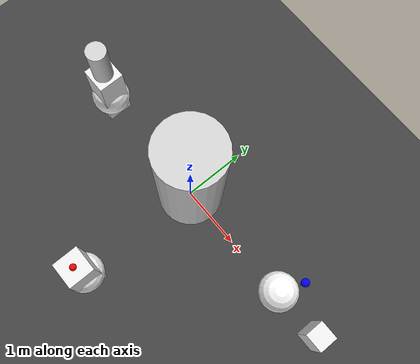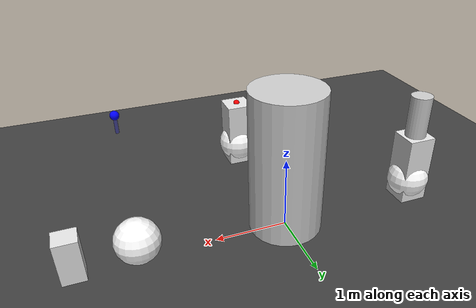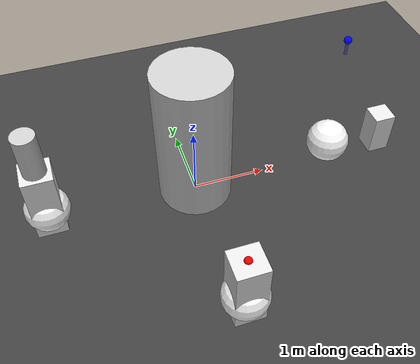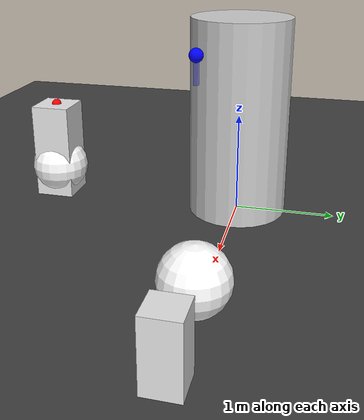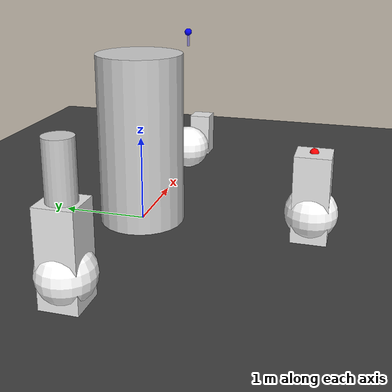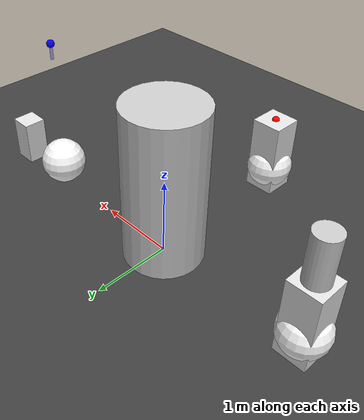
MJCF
<mujoco model="light_setup_visual">
    <compiler angle="degree"/>

    <visual>
        <quality shadowsize="4096"/>  <!-- Shadow chất lượng cao -->
    </visual>

    <asset>
        <!-- Textures giúp thấy rõ shadow và ánh sáng -->
        <texture name="grid" type="2d" builtin="checker" width="512" height="512"
                 rgb1="0.2 0.2 0.2" rgb2="0.3 0.3 0.3"/>
        <material name="grid_mat" texture="grid" texrepeat="5 5" reflectance="0.1"/>

        <!-- Materials với specular khác nhau -->
        <material name="shiny" specular="1" shininess="0.9" rgba="0.8 0.8 0.8 1"/>
        <material name="matte" specular="0.1" shininess="0.1" rgba="0.8 0.8 0.8 1"/>
    </asset>

    <worldbody>
        <!-- Ground với texture để thấy rõ shadow -->
        <geom type="plane" size="5 5 0.1" material="grid_mat"/>

        <!-- VÙNG 1: Directional light (Sun) -->
        <body name="sun_zone" pos="-2 0 0">
            <geom type="sphere" size="0.3" pos="0 0 0.3" rgba="1 1 1 1" material="shiny"/>
            <geom type="box" size="0.2 0.2 0.5" pos="0 0 0.5" rgba="0.9 0.9 0.9 1"/>
            <geom type="cylinder" size="0.15 0.4" pos="0 0 1.2" rgba="0.8 0.8 0.8 1" material="matte"/>
        </body>

        <!-- VÙNG 2: Red point light -->
        <body name="red_zone" pos="0 -2 0">
            <geom type="sphere" size="0.3" pos="0 0 0.3" rgba="1 1 1 1" material="shiny"/>
            <geom type="box" size="0.2 0.2 0.5" pos="0 0 0.5" rgba="0.9 0.9 0.9 1"/>
            <!-- Visual marker cho vị trí đèn -->
            <geom type="sphere" size="0.05" pos="0 0 1" rgba="1 0 0 1"
                  contype="0" conaffinity="0"/>
        </body>

        <!-- VÙNG 3: Blue spotlight -->
        <body name="blue_zone" pos="2 0 0">
            <!-- Vật trong vùng chiếu sáng -->
            <geom type="sphere" size="0.3" pos="0 0 0.3" rgba="1 1 1 1" material="shiny"/>
            <!-- Vật ngoài vùng chiếu sáng -->
            <geom type="box" size="0.15 0.15 0.3" pos="0.8 0 0.3" rgba="0.9 0.9 0.9 1"/>
            <!-- Visual marker cho spotlight -->
            <geom type="sphere" size="0.05" pos="0 0 2" rgba="0 0 1 1"
                  contype="0" conaffinity="0"/>
            <!-- Cone visualization (optional) -->
            <geom type="cylinder" size="0.02 0.1" pos="0 0 1.9" euler="0 0 0"
                  rgba="0 0 1 0.3" contype="0" conaffinity="0"/>
        </body>

        <!-- Central cylinder để so sánh tất cả ánh sáng -->
        <geom type="cylinder" size="0.5 1" pos="0 0 1" rgba="0.8 0.8 0.8 1" material="shiny"/>

        <!-- ===== LIGHTS ===== -->

        <!-- Positional fill light nhẹ để không quá tối -->
        <light name="ambient" directional="false" pos="0 0 3"
               diffuse="0.2 0.2 0.2" specular="0 0 0" castshadow="false"/>

        <!-- Sun - Directional light với shadow -->
        <light name="sun" directional="true" pos="0 -5 5" dir="0 1 -1"
               castshadow="true"
               diffuse="0.8 0.8 0.8"
               specular="0.3 0.3 0.3"/>

        <!-- Red point light - không shadow -->
        <light name="red_bulb" directional="false" pos="0 -2 1"
               diffuse="1 0 0"
               specular="0.5 0 0"
               castshadow="false"
               attenuation="1 0 0"/>  <!-- Constant attenuation -->

        <!-- Blue spotlight - có cutoff -->
        <light name="blue_spot" directional="false" pos="2 0 2" dir="-1 0 -1"
               diffuse="0 0 1"
               specular="0 0 0.5"
               cutoff="30"
               exponent="10"
               castshadow="false"/>

        <!-- Camera để xem toàn cảnh -->
        <camera name="overview" pos="0 -6 4" euler="35 0 0"/>
        <camera name="closeup" pos="0 -2 1.5" euler="20 0 0"/>
    </worldbody>
</mujoco>
